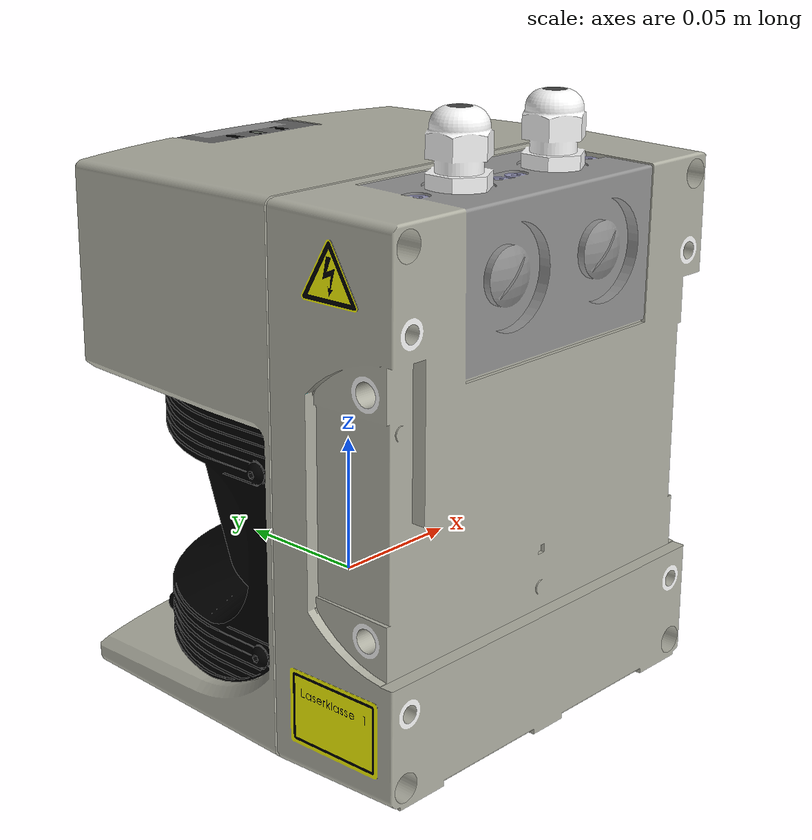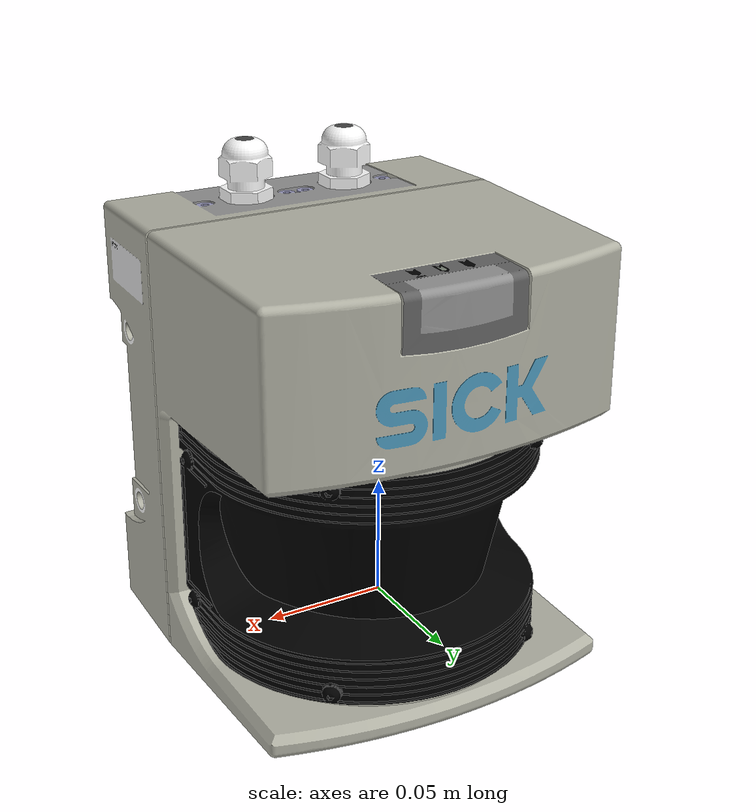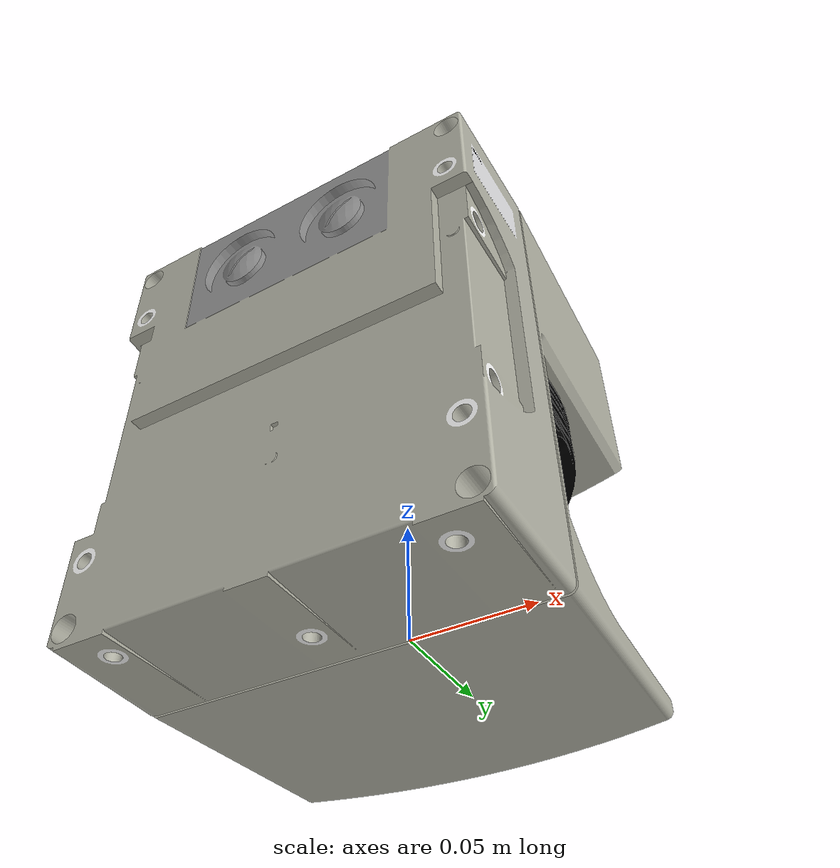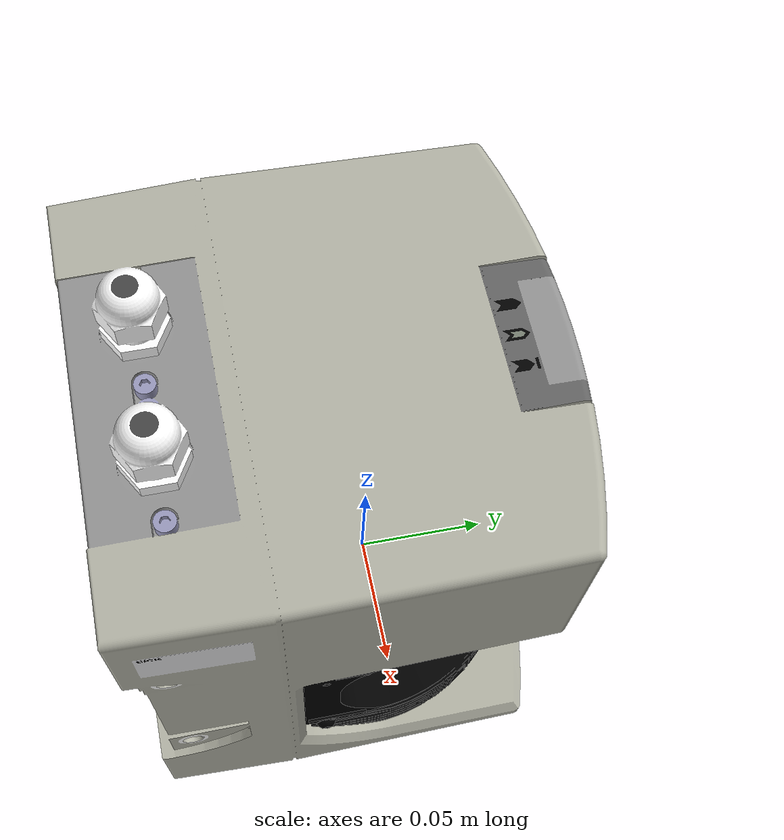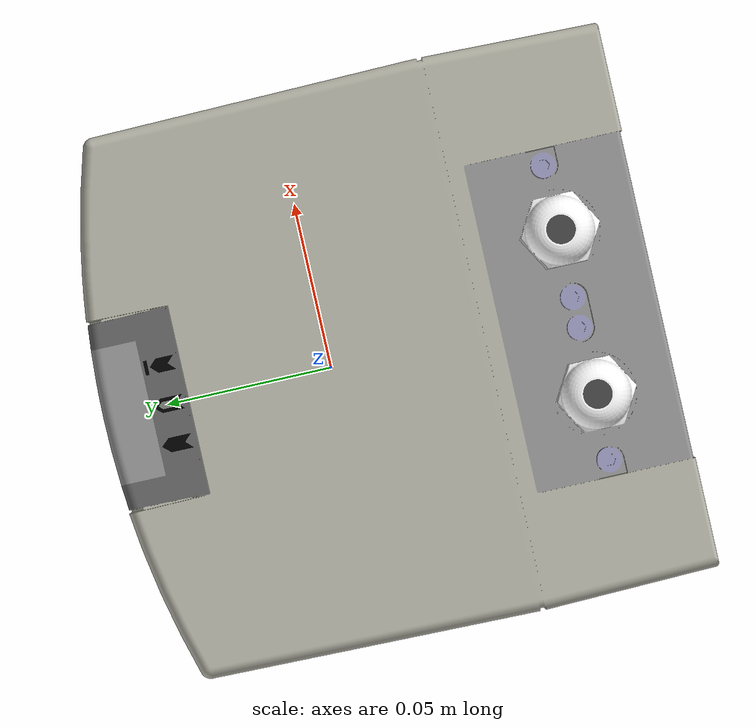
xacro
<?xml version="1.0"?>
<robot xmlns:xacro="http://ros.org/wiki/xacro" name="sick_lms_291_sim">

  <material name="dark">
    <color rgba="0.3 0.3 0.3 1.0"/>
  </material>

  <!-- argumentos -->
  <xacro:arg name="samples" default="180"/>
  <xacro:arg name="angle_min" default="-1.5708"/> <!-- radianes -->
  <xacro:arg name="angle_max" default="1.5708"/>
  <xacro:arg name="frequency" default="10.0"/>
  <xacro:arg name="range_min" default="0.01"/>
  <xacro:arg name="range_max" default="80.0"/>

  <!-- Incluir el archivo base del sensor -->
  <xacro:include filename="$(find caddy_ai2_ros2_sensors_lidar_sick_lms_291)/description/lidar_sick_lms_291.urdf.xacro" />

  <!-- Crear un link base para el mundo -->
  <link name="world"/>

  <!-- Instanciar el sensor en el mundo -->
  <xacro:lidar_sick_lms_291 parent="world">
    <origin xyz="0 0 0" rpy="0 0 0" />
  </xacro:lidar_sick_lms_291>

  <!-- incluir gazebo -->
  <xacro:include filename="$(find caddy_ai2_ros2_sensors_lidar_sick_lms_291)/description/lidar_sick_lms_291.gazebo.xacro"/>
  <xacro:lidar_sick_lms_291_gazebo
      samples="$(arg samples)"
      angle_min="$(arg angle_min)"
      angle_max="$(arg angle_max)"
      frequency="$(arg frequency)"
      range_min="$(arg range_min)"
      range_max="$(arg range_max)" />

</robot>

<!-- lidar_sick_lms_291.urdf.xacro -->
<robot xmlns:xacro="http://www.ros.org/wiki/xacro">

  <xacro:macro name="lidar_sick_lms_291" params="parent *origin">

  <joint name="base_joint" type="fixed">
    <xacro:insert_block name="origin" />
    <parent link="${parent}"/>
    <child link="base_link" />
  </joint>

    <!-- link físico del sensor -->
    <link name="base_link">
      <visual>
        <geometry>
          <mesh filename="file://$(find caddy_ai2_ros2_sensors_lidar_sick_lms_291)/meshes/SICK_LMS291-S05.dae" scale="1 1 1"/>
        </geometry>
      </visual>
      <!-- La colisión con el stl ralentiza en exceso la simulación -->
      <collision>
        <geometry>
          <box size="0.155 0.156 0.208"/>
        </geometry>
        <origin xyz="0.000 -0.015 0.075" rpy="0 0 0"/>
      </collision>

      <inertial>
        <mass value="4.500"/>
        <origin xyz="-0.000 -0.022 0.068" rpy="0 0 0"/>
        <inertia ixx="0.021158" ixy="-0.000001" ixz="-0.000001"
                iyy="0.021189" iyz="-0.000882" izz="0.015449"/>
      </inertial>
    </link>

    <!-- frame del haz del láser -->
    <link name="ray_link"/>

    <!-- Joint entre el cuerpo y el frame del haz -->
    <joint name="ray_joint" type="fixed">
      <parent link="base_link"/>
      <child link="ray_link"/>
      <origin xyz="0 0 0.1" rpy="0 0 1.5708"/>
    </joint>

  </xacro:macro>

</robot>
